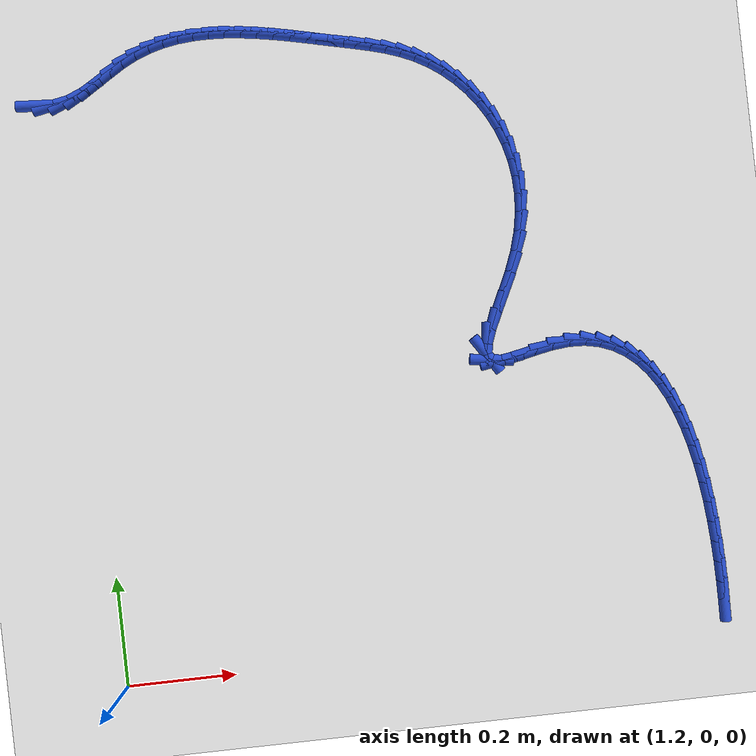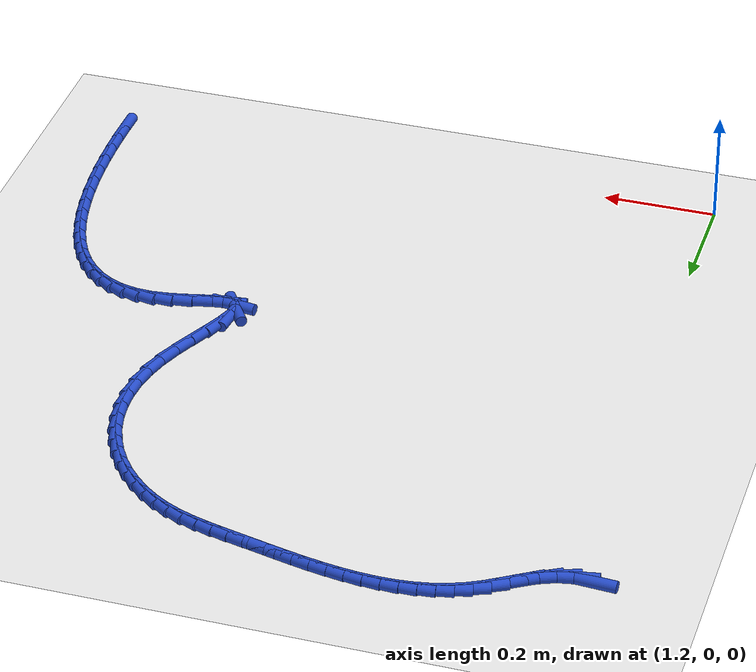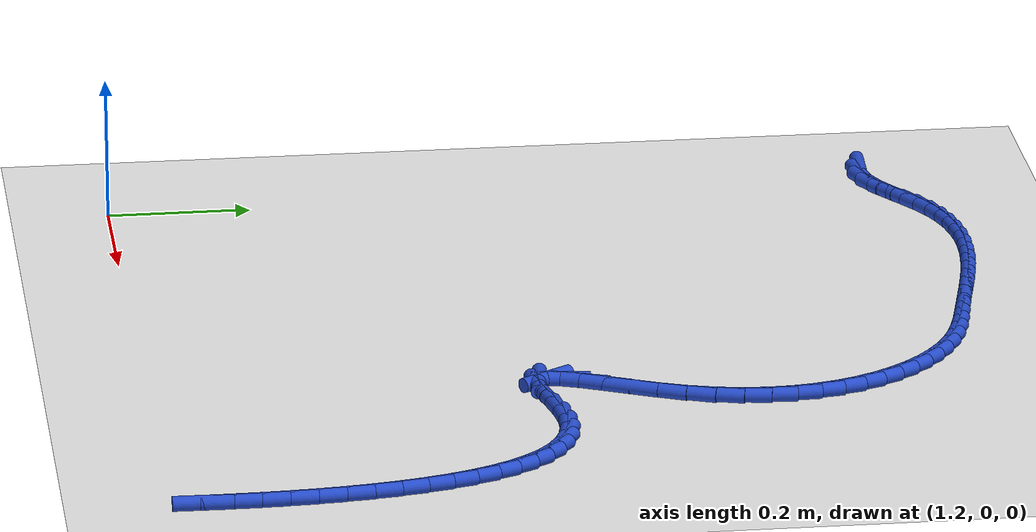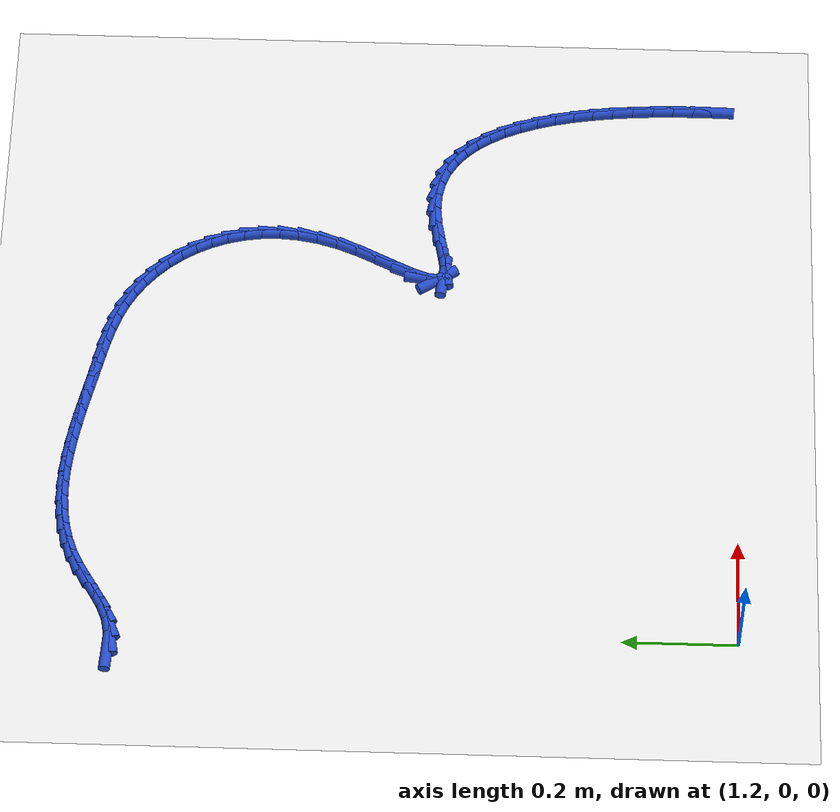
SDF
<sdf version="1.6">
 <world name="default">
  <model name="ground_plane">
   <static>1</static>
   <link name="link">
    <collision name="collision">
     <geometry><plane><normal>0 0 1</normal><size>100 100</size></plane></geometry>
     <surface><friction><ode><mu>100</mu><mu2>50</mu2></ode></friction></surface>
    </collision>
    <visual name="visual">
     <cast_shadows>0</cast_shadows>
     <geometry><plane><normal>0 0 1</normal><size>100 100</size></plane></geometry>
     <material>
      <script><uri>file://media/materials/scripts/gazebo.material</uri><name>Gazebo/WhiteGlow</name></script>
     </material>
    </visual>
   </link>
  </model>
  <model name="line">
   <link name="link_71">
    <pose>1.155740205684244 1.0738016635887804 0.01 0 1.57 -0.0623158825441884</pose>
    <collision name="collision">
     <geometry><cylinder><radius>0.01</radius><length>0.08</length></cylinder></geometry>
    </collision>
    <visual name="visual">
     <material>
      <script><name>Gazebo/Blue</name><uri>file://media/materials/scripts/gazebo.material</uri></script>
     </material>
     <geometry><cylinder><radius>0.01</radius><length>0.08</length></cylinder></geometry>
    </visual>
   </link>
   <link name="link_72">
    <pose>1.1849252234740182 1.0719806156311802 0.01 0 1.57 0.1851801011356724</pose>
    <collision name="collision">
     <geometry><cylinder><radius>0.01</radius><length>0.08</length></cylinder></geometry>
    </collision>
    <visual name="visual">
     <material>
      <script><name>Gazebo/Blue</name><uri>file://media/materials/scripts/gazebo.material</uri></script>
     </material>
     <geometry><cylinder><radius>0.01</radius><length>0.08</length></cylinder></geometry>
    </visual>
   </link>
   <link name="link_73">
    <pose>1.2124390527014814 1.0771346782395015 0.01 0 1.57 0.3870645522478079</pose>
    <collision name="collision">
     <geometry><cylinder><radius>0.01</radius><length>0.08</length></cylinder></geometry>
    </collision>
    <visual name="visual">
     <material>
      <script><name>Gazebo/Blue</name><uri>file://media/materials/scripts/gazebo.material</uri></script>
     </material>
     <geometry><cylinder><radius>0.01</radius><length>0.08</length></cylinder></geometry>
    </visual>
   </link>
   <link name="link_74">
    <pose>1.2386199839189125 1.087806748443775 0.01 0 1.57 0.5113178885886072</pose>
    <collision name="collision">
     <geometry><cylinder><radius>0.01</radius><length>0.08</length></cylinder></geometry>
    </collision>
    <visual name="visual">
     <material>
      <script><name>Gazebo/Blue</name><uri>file://media/materials/scripts/gazebo.material</uri></script>
     </material>
     <geometry><cylinder><radius>0.01</radius><length>0.08</length></cylinder></geometry>
    </visual>
   </link>
   <link name="link_75">
    <pose>1.2639571579565916 1.1020231891381715 0.01 0 1.57 0.5635656389518487</pose>
    <collision name="collision">
     <geometry><cylinder><radius>0.01</radius><length>0.08</length></cylinder></geometry>
    </collision>
    <visual name="visual">
     <material>
      <script><name>Gazebo/Blue</name><uri>file://media/materials/scripts/gazebo.material</uri></script>
     </material>
     <geometry><cylinder><radius>0.01</radius><length>0.08</length></cylinder></geometry>
    </visual>
   </link>
   <link name="link_76">
    <pose>1.2889397156447955 1.117810363216861 0.01 0 1.57 0.5495616790944967</pose>
    <collision name="collision">
     <geometry><cylinder><radius>0.01</radius><length>0.08</length></cylinder></geometry>
    </collision>
    <visual name="visual">
     <material>
      <script><name>Gazebo/Blue</name><uri>file://media/materials/scripts/gazebo.material</uri></script>
     </material>
     <geometry><cylinder><radius>0.01</radius><length>0.08</length></cylinder></geometry>
    </visual>
   </link>
   <link name="link_77">
    <pose>1.3140567978138031 1.133194633574014 0.01 0 1.57 0.4703430032220692</pose>
    <collision name="collision">
     <geometry><cylinder><radius>0.01</radius><length>0.08</length></cylinder></geometry>
    </collision>
    <visual name="visual">
     <material>
      <script><name>Gazebo/Blue</name><uri>file://media/materials/scripts/gazebo.material</uri></script>
     </material>
     <geometry><cylinder><radius>0.01</radius><length>0.08</length></cylinder></geometry>
    </visual>
   </link>
   <link name="link_78">
    <pose>1.3397795237980252 1.146272002655462 0.01 0 1.57 0.3619452551312873</pose>
    <collision name="collision">
     <geometry><cylinder><radius>0.01</radius><length>0.08</length></cylinder></geometry>
    </collision>
    <visual name="visual">
     <material>
      <script><name>Gazebo/Blue</name><uri>file://media/materials/scripts/gazebo.material</uri></script>
     </material>
     <geometry><cylinder><radius>0.01</radius><length>0.08</length></cylinder></geometry>
    </visual>
   </link>
   <link name="link_79">
    <pose>1.3662772139083892 1.1563046995533062 0.01 0 1.57 0.2593971306415469</pose>
    <collision name="collision">
     <geometry><cylinder><radius>0.01</radius><length>0.08</length></cylinder></geometry>
    </collision>
    <visual name="visual">
     <material>
      <script><name>Gazebo/Blue</name><uri>file://media/materials/scripts/gazebo.material</uri></script>
     </material>
     <geometry><cylinder><radius>0.01</radius><length>0.08</length></cylinder></geometry>
    </visual>
   </link>
   <link name="link_80">
    <pose>1.3934692406700901 1.1635208139000017 0.01 0 1.57 0.16597835343669565</pose>
    <collision name="collision">
     <geometry><cylinder><radius>0.01</radius><length>0.08</length></cylinder></geometry>
    </collision>
    <visual name="visual">
     <material>
      <script><name>Gazebo/Blue</name><uri>file://media/materials/scripts/gazebo.material</uri></script>
     </material>
     <geometry><cylinder><radius>0.01</radius><length>0.08</length></cylinder></geometry>
    </visual>
   </link>
   <link name="link_81">
    <pose>1.4212674410177735 1.1681775547280415 0.01 0 1.57 0.0829620855339889</pose>
    <collision name="collision">
     <geometry><cylinder><radius>0.01</radius><length>0.08</length></cylinder></geometry>
    </collision>
    <visual name="visual">
     <material>
      <script><name>Gazebo/Blue</name><uri>file://media/materials/scripts/gazebo.material</uri></script>
     </material>
     <geometry><cylinder><radius>0.01</radius><length>0.08</length></cylinder></geometry>
    </visual>
   </link>
   <link name="link_82">
    <pose>1.449583651886083 1.1705321310699164 0.01 0 1.57 0.01077048241809507</pose>
    <collision name="collision">
     <geometry><cylinder><radius>0.01</radius><length>0.08</length></cylinder></geometry>
    </collision>
    <visual name="visual">
     <material>
      <script><name>Gazebo/Blue</name><uri>file://media/materials/scripts/gazebo.material</uri></script>
     </material>
     <geometry><cylinder><radius>0.01</radius><length>0.08</length></cylinder></geometry>
    </visual>
   </link>
   <link name="link_83">
    <pose>1.4783297102096633 1.17084175195812 0.01 0 1.57 -0.05077242349060706</pose>
    <collision name="collision">
     <geometry><cylinder><radius>0.01</radius><length>0.08</length></cylinder></geometry>
    </collision>
    <visual name="visual">
     <material>
      <script><name>Gazebo/Blue</name><uri>file://media/materials/scripts/gazebo.material</uri></script>
     </material>
     <geometry><cylinder><radius>0.01</radius><length>0.08</length></cylinder></geometry>
    </visual>
   </link>
   <link name="link_84">
    <pose>1.507417452923158 1.169363626425144 0.01 0 1.57 -0.10218319378531548</pose>
    <collision name="collision">
     <geometry><cylinder><radius>0.01</radius><length>0.08</length></cylinder></geometry>
    </collision>
    <visual name="visual">
     <material>
      <script><name>Gazebo/Blue</name><uri>file://media/materials/scripts/gazebo.material</uri></script>
     </material>
     <geometry><cylinder><radius>0.01</radius><length>0.08</length></cylinder></geometry>
    </visual>
   </link>
   <link name="link_85">
    <pose>1.5367587169612131 1.1663549635034802 0.01 0 1.57 -0.14411362504293787</pose>
    <collision name="collision">
     <geometry><cylinder><radius>0.01</radius><length>0.08</length></cylinder></geometry>
    </collision>
    <visual name="visual">
     <material>
      <script><name>Gazebo/Blue</name><uri>file://media/materials/scripts/gazebo.material</uri></script>
     </material>
     <geometry><cylinder><radius>0.01</radius><length>0.08</length></cylinder></geometry>
    </visual>
   </link>
   <link name="link_86">
    <pose>1.566265339258472 1.162072972225622 0.01 0 1.57 -0.17720954699792554</pose>
    <collision name="collision">
     <geometry><cylinder><radius>0.01</radius><length>0.08</length></cylinder></geometry>
    </collision>
    <visual name="visual">
     <material>
      <script><name>Gazebo/Blue</name><uri>file://media/materials/scripts/gazebo.material</uri></script>
     </material>
     <geometry><cylinder><radius>0.01</radius><length>0.08</length></cylinder></geometry>
    </visual>
   </link>
   <link name="link_87">
    <pose>1.59584915674958 1.1567748616240607 0.01 0 1.57 -0.20202292399003485</pose>
    <collision name="collision">
     <geometry><cylinder><radius>0.01</radius><length>0.08</length></cylinder></geometry>
    </collision>
    <visual name="visual">
     <material>
      <script><name>Gazebo/Blue</name><uri>file://media/materials/scripts/gazebo.material</uri></script>
     </material>
     <geometry><cylinder><radius>0.01</radius><length>0.08</length></cylinder></geometry>
    </visual>
   </link>
   <link name="link_88">
    <pose>1.62542200636918 1.1507178407312886 0.01 0 1.57 -0.21896013679982287</pose>
    <collision name="collision">
     <geometry><cylinder><radius>0.01</radius><length>0.08</length></cylinder></geometry>
    </collision>
    <visual name="visual">
     <material>
      <script><name>Gazebo/Blue</name><uri>file://media/materials/scripts/gazebo.material</uri></script>
     </material>
     <geometry><cylinder><radius>0.01</radius><length>0.08</length></cylinder></geometry>
    </visual>
   </link>
   <link name="link_89">
    <pose>1.6548957250519178 1.1441591185797986 0.01 0 1.57 -0.22825101534295333</pose>
    <collision name="collision">
     <geometry><cylinder><radius>0.01</radius><length>0.08</length></cylinder></geometry>
    </collision>
    <visual name="visual">
     <material>
      <script><name>Gazebo/Blue</name><uri>file://media/materials/scripts/gazebo.material</uri></script>
     </material>
     <geometry><cylinder><radius>0.01</radius><length>0.08</length></cylinder></geometry>
    </visual>
   </link>
   <link name="link_90">
    <pose>1.6841821497324372 1.137355904202082 0.01 0 1.57 -0.22992719399648778</pose>
    <collision name="collision">
     <geometry><cylinder><radius>0.01</radius><length>0.08</length></cylinder></geometry>
    </collision>
    <visual name="visual">
     <material>
      <script><name>Gazebo/Blue</name><uri>file://media/materials/scripts/gazebo.material</uri></script>
     </material>
     <geometry><cylinder><radius>0.01</radius><length>0.08</length></cylinder></geometry>
    </visual>
   </link>
   <link name="link_91">
    <pose>1.7131931173453832 1.1305654066306317 0.01 0 1.57 -0.2273528205879617</pose>
    <collision name="collision">
     <geometry><cylinder><radius>0.01</radius><length>0.08</length></cylinder></geometry>
    </collision>
    <visual name="visual">
     <material>
      <script><name>Gazebo/Blue</name><uri>file://media/materials/scripts/gazebo.material</uri></script>
     </material>
     <geometry><cylinder><radius>0.01</radius><length>0.08</length></cylinder></geometry>
    </visual>
   </link>
   <link name="link_92">
    <pose>1.7418338892478185 1.1239392844451332 0.01 0 1.57 -0.24014466228513986</pose>
    <collision name="collision">
     <geometry><cylinder><radius>0.01</radius><length>0.08</length></cylinder></geometry>
    </collision>
    <visual name="visual">
     <material>
      <script><name>Gazebo/Blue</name><uri>file://media/materials/scripts/gazebo.material</uri></script>
     </material>
     <geometry><cylinder><radius>0.01</radius><length>0.08</length></cylinder></geometry>
    </visual>
   </link>
   <link name="link_93">
    <pose>1.7699735643913241 1.1170487212440794 0.01 0 1.57 -0.27582676932500017</pose>
    <collision name="collision">
     <geometry><cylinder><radius>0.01</radius><length>0.08</length></cylinder></geometry>
    </collision>
    <visual name="visual">
     <material>
      <script><name>Gazebo/Blue</name><uri>file://media/materials/scripts/gazebo.material</uri></script>
     </material>
     <geometry><cylinder><radius>0.01</radius><length>0.08</length></cylinder></geometry>
    </visual>
   </link>
   <link name="link_94">
    <pose>1.797468876131232 1.1092664094261584 0.01 0 1.57 -0.3351348015333552</pose>
    <collision name="collision">
     <geometry><cylinder><radius>0.01</radius><length>0.08</length></cylinder></geometry>
    </collision>
    <visual name="visual">
     <material>
      <script><name>Gazebo/Blue</name><uri>file://media/materials/scripts/gazebo.material</uri></script>
     </material>
     <geometry><cylinder><radius>0.01</radius><length>0.08</length></cylinder></geometry>
    </visual>
   </link>
   <link name="link_95">
    <pose>1.8241765470533347 1.0999648685186152 0.01 0 1.57 -0.417954742862448</pose>
    <collision name="collision">
     <geometry><cylinder><radius>0.01</radius><length>0.08</length></cylinder></geometry>
    </collision>
    <visual name="visual">
     <material>
      <script><name>Gazebo/Blue</name><uri>file://media/materials/scripts/gazebo.material</uri></script>
     </material>
     <geometry><cylinder><radius>0.01</radius><length>0.08</length></cylinder></geometry>
    </visual>
   </link>
   <link name="link_96">
    <pose>1.8499532719138303 1.0885168670786085 0.01 0 1.57 -0.5171883826098536</pose>
    <collision name="collision">
     <geometry><cylinder><radius>0.01</radius><length>0.08</length></cylinder></geometry>
    </collision>
    <visual name="visual">
     <material>
      <script><name>Gazebo/Blue</name><uri>file://media/materials/scripts/gazebo.material</uri></script>
     </material>
     <geometry><cylinder><radius>0.01</radius><length>0.08</length></cylinder></geometry>
    </visual>
   </link>
   <link name="link_97">
    <pose>1.874635449065376 1.0744767936933668 0.01 0 1.57 -0.6169609946714725</pose>
    <collision name="collision">
     <geometry><cylinder><radius>0.01</radius><length>0.08</length></cylinder></geometry>
    </collision>
    <visual name="visual">
     <material>
      <script><name>Gazebo/Blue</name><uri>file://media/materials/scripts/gazebo.material</uri></script>
     </material>
     <geometry><cylinder><radius>0.01</radius><length>0.08</length></cylinder></geometry>
    </visual>
   </link>
   <link name="link_98">
    <pose>1.8980033579518198 1.057901210543721 0.01 0 1.57 -0.715503757563196</pose>
    <collision name="collision">
     <geometry><cylinder><radius>0.01</radius><length>0.08</length></cylinder></geometry>
    </collision>
    <visual name="visual">
     <material>
      <script><name>Gazebo/Blue</name><uri>file://media/materials/scripts/gazebo.material</uri></script>
     </material>
     <geometry><cylinder><radius>0.01</radius><length>0.08</length></cylinder></geometry>
    </visual>
   </link>
   <link name="link_99">
    <pose>1.9198276598643855 1.0389327467417884 0.01 0 1.57 -0.8136764746908689</pose>
    <collision name="collision">
     <geometry><cylinder><radius>0.01</radius><length>0.08</length></cylinder></geometry>
    </collision>
    <visual name="visual">
     <material>
      <script><name>Gazebo/Blue</name><uri>file://media/materials/scripts/gazebo.material</uri></script>
     </material>
     <geometry><cylinder><radius>0.01</radius><length>0.08</length></cylinder></geometry>
    </visual>
   </link>
   <link name="link_100">
    <pose>1.9398790160942978 1.0177140313996842 0.01 0 1.57 -0.9122591491433035</pose>
    <collision name="collision">
     <geometry><cylinder><radius>0.01</radius><length>0.08</length></cylinder></geometry>
    </collision>
    <visual name="visual">
     <material>
      <script><name>Gazebo/Blue</name><uri>file://media/materials/scripts/gazebo.material</uri></script>
     </material>
     <geometry><cylinder><radius>0.01</radius><length>0.08</length></cylinder></geometry>
    </visual>
   </link>
   <link name="link_101">
    <pose>1.9579280879327792 0.9943876936295263 0.01 0 1.57 -1.0119023092467068</pose>
    <collision name="collision">
     <geometry><cylinder><radius>0.01</radius><length>0.08</length></cylinder></geometry>
    </collision>
    <visual name="visual">
     <material>
      <script><name>Gazebo/Blue</name><uri>file://media/materials/scripts/gazebo.material</uri></script>
     </material>
     <geometry><cylinder><radius>0.01</radius><length>0.08</length></cylinder></geometry>
    </visual>
   </link>
   <link name="link_102">
    <pose>1.9737455366710526 0.9690963625434302 0.01 0 1.57 -1.1130778942528932</pose>
    <collision name="collision">
     <geometry><cylinder><radius>0.01</radius><length>0.08</length></cylinder></geometry>
    </collision>
    <visual name="visual">
     <material>
      <script><name>Gazebo/Blue</name><uri>file://media/materials/scripts/gazebo.material</uri></script>
     </material>
     <geometry><cylinder><radius>0.01</radius><length>0.08</length></cylinder></geometry>
    </visual>
   </link>
   <link name="link_103">
    <pose>1.9871020236003425 0.9419826672535125 0.01 0 1.57 -1.2160310319602583</pose>
    <collision name="collision">
     <geometry><cylinder><radius>0.01</radius><length>0.08</length></cylinder></geometry>
    </collision>
    <visual name="visual">
     <material>
      <script><name>Gazebo/Blue</name><uri>file://media/materials/scripts/gazebo.material</uri></script>
     </material>
     <geometry><cylinder><radius>0.01</radius><length>0.08</length></cylinder></geometry>
    </visual>
   </link>
   <link name="link_104">
    <pose>1.9977682100118732 0.9131892368718897 0.01 0 1.57 -1.3207378358200592</pose>
    <collision name="collision">
     <geometry><cylinder><radius>0.01</radius><length>0.08</length></cylinder></geometry>
    </collision>
    <visual name="visual">
     <material>
      <script><name>Gazebo/Blue</name><uri>file://media/materials/scripts/gazebo.material</uri></script>
     </material>
     <geometry><cylinder><radius>0.01</radius><length>0.08</length></cylinder></geometry>
    </visual>
   </link>
   <link name="link_105">
    <pose>2.005514757196866 0.8828587005106782 0.01 0 1.57 -1.4268788657941713</pose>
    <collision name="collision">
     <geometry><cylinder><radius>0.01</radius><length>0.08</length></cylinder></geometry>
    </collision>
    <visual name="visual">
     <material>
      <script><name>Gazebo/Blue</name><uri>file://media/materials/scripts/gazebo.material</uri></script>
     </material>
     <geometry><cylinder><radius>0.01</radius><length>0.08</length></cylinder></geometry>
    </visual>
   </link>
   <link name="link_106">
    <pose>2.0101123264465466 0.8511336872819948 0.01 0 1.57 -1.533840186902279</pose>
    <collision name="collision">
     <geometry><cylinder><radius>0.01</radius><length>0.08</length></cylinder></geometry>
    </collision>
    <visual name="visual">
     <material>
      <script><name>Gazebo/Blue</name><uri>file://media/materials/scripts/gazebo.material</uri></script>
     </material>
     <geometry><cylinder><radius>0.01</radius><length>0.08</length></cylinder></geometry>
    </visual>
   </link>
   <link name="link_107">
    <pose>2.011331579052137 0.8181568262979552 0.01 0 1.57 1.5008409252602342</pose>
    <collision name="collision">
     <geometry><cylinder><radius>0.01</radius><length>0.08</length></cylinder></geometry>
    </collision>
    <visual name="visual">
     <material>
      <script><name>Gazebo/Blue</name><uri>file://media/materials/scripts/gazebo.material</uri></script>
     </material>
     <geometry><cylinder><radius>0.01</radius><length>0.08</length></cylinder></geometry>
    </visual>
   </link>
   <link name="link_108">
    <pose>2.0089431763048617 0.7840707466706764 0.01 0 1.57 1.3950278551251099</pose>
    <collision name="collision">
     <geometry><cylinder><radius>0.01</radius><length>0.08</length></cylinder></geometry>
    </collision>
    <visual name="visual">
     <material>
      <script><name>Gazebo/Blue</name><uri>file://media/materials/scripts/gazebo.material</uri></script>
     </material>
     <geometry><cylinder><radius>0.01</radius><length>0.08</length></cylinder></geometry>
    </visual>
   </link>
   <link name="link_109">
    <pose>2.0027177794959434 0.7490180775122739 0.01 0 1.57 1.2914336325551075</pose>
    <collision name="collision">
     <geometry><cylinder><radius>0.01</radius><length>0.08</length></cylinder></geometry>
    </collision>
    <visual name="visual">
     <material>
      <script><name>Gazebo/Blue</name><uri>file://media/materials/scripts/gazebo.material</uri></script>
     </material>
     <geometry><cylinder><radius>0.01</radius><length>0.08</length></cylinder></geometry>
    </visual>
   </link>
   <link name="link_110">
    <pose>1.9924260499166073 0.7131414479348659 0.01 0 1.57 1.1969675031558646</pose>
    <collision name="collision">
     <geometry><cylinder><radius>0.01</radius><length>0.08</length></cylinder></geometry>
    </collision>
    <visual name="visual">
     <material>
      <script><name>Gazebo/Blue</name><uri>file://media/materials/scripts/gazebo.material</uri></script>
     </material>
     <geometry><cylinder><radius>0.01</radius><length>0.08</length></cylinder></geometry>
    </visual>
   </link>
   <link name="link_111">
    <pose>1.978146883572078 0.6767404985117013 0.01 0 1.57 1.1383208415952442</pose>
    <collision name="collision">
     <geometry><cylinder><radius>0.01</radius><length>0.08</length></cylinder></geometry>
    </collision>
    <visual name="visual">
     <material>
      <script><name>Gazebo/Blue</name><uri>file://media/materials/scripts/gazebo.material</uri></script>
     </material>
     <geometry><cylinder><radius>0.01</radius><length>0.08</length></cylinder></geometry>
    </visual>
   </link>
   <link name="link_112">
    <pose>1.9616334308365386 0.6409677170549598 0.01 0 1.57 1.117242657049588</pose>
    <collision name="collision">
     <geometry><cylinder><radius>0.01</radius><length>0.08</length></cylinder></geometry>
    </collision>
    <visual name="visual">
     <material>
      <script><name>Gazebo/Blue</name><uri>file://media/materials/scripts/gazebo.material</uri></script>
     </material>
     <geometry><cylinder><radius>0.01</radius><length>0.08</length></cylinder></geometry>
    </visual>
   </link>
   <link name="link_113">
    <pose>1.9452045988858941 0.6072637818305535 0.01 0 1.57 1.1359590417704133</pose>
    <collision name="collision">
     <geometry><cylinder><radius>0.01</radius><length>0.08</length></cylinder></geometry>
    </collision>
    <visual name="visual">
     <material>
      <script><name>Gazebo/Blue</name><uri>file://media/materials/scripts/gazebo.material</uri></script>
     </material>
     <geometry><cylinder><radius>0.01</radius><length>0.08</length></cylinder></geometry>
    </visual>
   </link>
   <link name="link_114">
    <pose>1.9311797376176343 0.5770695966220283 0.01 0 1.57 1.2177608655180556</pose>
    <collision name="collision">
     <geometry><cylinder><radius>0.01</radius><length>0.08</length></cylinder></geometry>
    </collision>
    <visual name="visual">
     <material>
      <script><name>Gazebo/Blue</name><uri>file://media/materials/scripts/gazebo.material</uri></script>
     </material>
     <geometry><cylinder><radius>0.01</radius><length>0.08</length></cylinder></geometry>
    </visual>
   </link>
   <link name="link_115">
    <pose>1.9218781969292473 0.5518260652129277 0.01 0 1.57 1.4515434527214108</pose>
    <collision name="collision">
     <geometry><cylinder><radius>0.01</radius><length>0.08</length></cylinder></geometry>
    </collision>
    <visual name="visual">
     <material>
      <script><name>Gazebo/Blue</name><uri>file://media/materials/scripts/gazebo.material</uri></script>
     </material>
     <geometry><cylinder><radius>0.01</radius><length>0.08</length></cylinder></geometry>
    </visual>
   </link>
   <link name="link_116">
    <pose>1.919619326718222 0.5329740913867962 0.01 0 1.57 -0.9982283788407794</pose>
    <collision name="collision">
     <geometry><cylinder><radius>0.01</radius><length>0.08</length></cylinder></geometry>
    </collision>
    <visual name="visual">
     <material>
      <script><name>Gazebo/Blue</name><uri>file://media/materials/scripts/gazebo.material</uri></script>
     </material>
     <geometry><cylinder><radius>0.01</radius><length>0.08</length></cylinder></geometry>
    </visual>
   </link>
   <link name="link_117">
    <pose>1.9267224768820463 0.5219545789271779 0.01 0 1.57 -0.13540924114605765</pose>
    <collision name="collision">
     <geometry><cylinder><radius>0.01</radius><length>0.08</length></cylinder></geometry>
    </collision>
    <visual name="visual">
     <material>
      <script><name>Gazebo/Blue</name><uri>file://media/materials/scripts/gazebo.material</uri></script>
     </material>
     <geometry><cylinder><radius>0.01</radius><length>0.08</length></cylinder></geometry>
    </visual>
   </link>
   <link name="link_118">
    <pose>1.9446646445687483 0.5195100848484832 0.01 0 1.57 0.14193153784038073</pose>
    <collision name="collision">
     <geometry><cylinder><radius>0.01</radius><length>0.08</length></cylinder></geometry>
    </collision>
    <visual name="visual">
     <material>
      <script><name>Gazebo/Blue</name><uri>file://media/materials/scripts/gazebo.material</uri></script>
     </material>
     <geometry><cylinder><radius>0.01</radius><length>0.08</length></cylinder></geometry>
    </visual>
   </link>
   <link name="link_119">
    <pose>1.9712072893252353 0.5233028252022651 0.01 0 1.57 0.21144182752732463</pose>
    <collision name="collision">
     <geometry><cylinder><radius>0.01</radius><length>0.08</length></cylinder></geometry>
    </collision>
    <visual name="visual">
     <material>
      <script><name>Gazebo/Blue</name><uri>file://media/materials/scripts/gazebo.material</uri></script>
     </material>
     <geometry><cylinder><radius>0.01</radius><length>0.08</length></cylinder></geometry>
    </visual>
   </link>
   <link name="link_120">
    <pose>2.0030877465457357 0.5301459729358995 0.01 0 1.57 0.19500404695090784</pose>
    <collision name="collision">
     <geometry><cylinder><radius>0.01</radius><length>0.08</length></cylinder></geometry>
    </collision>
    <visual name="visual">
     <material>
      <script><name>Gazebo/Blue</name><uri>file://media/materials/scripts/gazebo.material</uri></script>
     </material>
     <geometry><cylinder><radius>0.01</radius><length>0.08</length></cylinder></geometry>
    </visual>
   </link>
   <link name="link_121">
    <pose>2.037043319465709 0.5368526743357535 0.01 0 1.57 0.1048585441424994</pose>
    <collision name="collision">
     <geometry><cylinder><radius>0.01</radius><length>0.08</length></cylinder></geometry>
    </collision>
    <visual name="visual">
     <material>
      <script><name>Gazebo/Blue</name><uri>file://media/materials/scripts/gazebo.material</uri></script>
     </material>
     <geometry><cylinder><radius>0.01</radius><length>0.08</length></cylinder></geometry>
    </visual>
   </link>
   <link name="link_122">
    <pose>2.069881699063501 0.5403087351320334 0.01 0 1.57 -0.04105745409878657</pose>
    <collision name="collision">
     <geometry><cylinder><radius>0.01</radius><length>0.08</length></cylinder></geometry>
    </collision>
    <visual name="visual">
     <material>
      <script><name>Gazebo/Blue</name><uri>file://media/materials/scripts/gazebo.material</uri></script>
     </material>
     <geometry><cylinder><radius>0.01</radius><length>0.08</length></cylinder></geometry>
    </visual>
   </link>
   <link name="link_123">
    <pose>2.1000286737571003 0.5390702811308115 0.01 0 1.57 -0.2046297407221471</pose>
    <collision name="collision">
     <geometry><cylinder><radius>0.01</radius><length>0.08</length></cylinder></geometry>
    </collision>
    <visual name="visual">
     <material>
      <script><name>Gazebo/Blue</name><uri>file://media/materials/scripts/gazebo.material</uri></script>
     </material>
     <geometry><cylinder><radius>0.01</radius><length>0.08</length></cylinder></geometry>
    </visual>
   </link>
   <link name="link_124">
    <pose>2.127527673620521 0.5333632877204056 0.01 0 1.57 -0.37673995794470283</pose>
    <collision name="collision">
     <geometry><cylinder><radius>0.01</radius><length>0.08</length></cylinder></geometry>
    </collision>
    <visual name="visual">
     <material>
      <script><name>Gazebo/Blue</name><uri>file://media/materials/scripts/gazebo.material</uri></script>
     </material>
     <geometry><cylinder><radius>0.01</radius><length>0.08</length></cylinder></geometry>
    </visual>
   </link>
   <link name="link_125">
    <pose>2.1524924253139397 0.5234862956342468 0.01 0 1.57 -0.547625875535118</pose>
    <collision name="collision">
     <geometry><cylinder><radius>0.01</radius><length>0.08</length></cylinder></geometry>
    </collision>
    <visual name="visual">
     <material>
      <script><name>Gazebo/Blue</name><uri>file://media/materials/scripts/gazebo.material</uri></script>
     </material>
     <geometry><cylinder><radius>0.01</radius><length>0.08</length></cylinder></geometry>
    </visual>
   </link>
   <link name="link_126">
    <pose>2.1750366554975344 0.5097378456057653 0.01 0 1.57 -0.7079135349083102</pose>
    <collision name="collision">
     <geometry><cylinder><radius>0.01</radius><length>0.08</length></cylinder></geometry>
    </collision>
    <visual name="visual">
     <material>
      <script><name>Gazebo/Blue</name><uri>file://media/materials/scripts/gazebo.material</uri></script>
     </material>
     <geometry><cylinder><radius>0.01</radius><length>0.08</length></cylinder></geometry>
    </visual>
   </link>
   <link name="link_127">
    <pose>2.195274090831482 0.4924164783683918 0.01 0 1.57 -0.8513316791386117</pose>
    <collision name="collision">
     <geometry><cylinder><radius>0.01</radius><length>0.08</length></cylinder></geometry>
    </collision>
    <visual name="visual">
     <material>
      <script><name>Gazebo/Blue</name><uri>file://media/materials/scripts/gazebo.material</uri></script>
     </material>
     <geometry><cylinder><radius>0.01</radius><length>0.08</length></cylinder></geometry>
    </visual>
   </link>
   <link name="link_128">
    <pose>2.213318457975959 0.471820734655557 0.01 0 1.57 -0.9754684173120667</pose>
    <collision name="collision">
     <geometry><cylinder><radius>0.01</radius><length>0.08</length></cylinder></geometry>
    </collision>
    <visual name="visual">
     <material>
      <script><name>Gazebo/Blue</name><uri>file://media/materials/scripts/gazebo.material</uri></script>
     </material>
     <geometry><cylinder><radius>0.01</radius><length>0.08</length></cylinder></geometry>
    </visual>
   </link>
   <link name="link_129">
    <pose>2.229283483591144 0.4482491552006915 0.01 0 1.57 -1.0808386733233988</pose>
    <collision name="collision">
     <geometry><cylinder><radius>0.01</radius><length>0.08</length></cylinder></geometry>
    </collision>
    <visual name="visual">
     <material>
      <script><name>Gazebo/Blue</name><uri>file://media/materials/scripts/gazebo.material</uri></script>
     </material>
     <geometry><cylinder><radius>0.01</radius><length>0.08</length></cylinder></geometry>
    </visual>
   </link>
   <link name="link_130">
    <pose>2.243282894337214 0.4220002807372258 0.01 0 1.57 -1.1694944715827558</pose>
    <collision name="collision">
     <geometry><cylinder><radius>0.01</radius><length>0.08</length></cylinder></geometry>
    </collision>
    <visual name="visual">
     <material>
      <script><name>Gazebo/Blue</name><uri>file://media/materials/scripts/gazebo.material</uri></script>
     </material>
     <geometry><cylinder><radius>0.01</radius><length>0.08</length></cylinder></geometry>
    </visual>
   </link>
   <link name="link_131">
    <pose>2.2554304168743444 0.39337265199859006 0.01 0 1.57 -1.243971925056247</pose>
    <collision name="collision">
     <geometry><cylinder><radius>0.01</radius><length>0.08</length></cylinder></geometry>
    </collision>
    <visual name="visual">
     <material>
      <script><name>Gazebo/Blue</name><uri>file://media/materials/scripts/gazebo.material</uri></script>
     </material>
     <geometry><cylinder><radius>0.01</radius><length>0.08</length></cylinder></geometry>
    </visual>
   </link>
   <link name="link_132">
    <pose>2.2658397778627144 0.36266480971821585 0.01 0 1.57 -1.3067185572653033</pose>
    <collision name="collision">
     <geometry><cylinder><radius>0.01</radius><length>0.08</length></cylinder></geometry>
    </collision>
    <visual name="visual">
     <material>
      <script><name>Gazebo/Blue</name><uri>file://media/materials/scripts/gazebo.material</uri></script>
     </material>
     <geometry><cylinder><radius>0.01</radius><length>0.08</length></cylinder></geometry>
    </visual>
   </link>
   <link name="link_133">
    <pose>2.274624703962501 0.3301752946295333 0.01 0 1.57 -1.3598615882490204</pose>
    <collision name="collision">
     <geometry><cylinder><radius>0.01</radius><length>0.08</length></cylinder></geometry>
    </collision>
    <visual name="visual">
     <material>
      <script><name>Gazebo/Blue</name><uri>file://media/materials/scripts/gazebo.material</uri></script>
     </material>
     <geometry><cylinder><radius>0.01</radius><length>0.08</length></cylinder></geometry>
    </visual>
   </link>
   <link name="link_134">
    <pose>2.2818989218338817 0.29620264746597313 0.01 0 1.57 -1.4051579391201183</pose>
    <collision name="collision">
     <geometry><cylinder><radius>0.01</radius><length>0.08</length></cylinder></geometry>
    </collision>
    <visual name="visual">
     <material>
      <script><name>Gazebo/Blue</name><uri>file://media/materials/scripts/gazebo.material</uri></script>
     </material>
     <geometry><cylinder><radius>0.01</radius><length>0.08</length></cylinder></geometry>
    </visual>
   </link>
   <link name="link_135">
    <pose>2.287776158137032 0.2610454089609652 0.01 0 1.57 -1.4440225435743743</pose>
    <collision name="collision">
     <geometry><cylinder><radius>0.01</radius><length>0.08</length></cylinder></geometry>
    </collision>
    <visual name="visual">
     <material>
      <script><name>Gazebo/Blue</name><uri>file://media/materials/scripts/gazebo.material</uri></script>
     </material>
     <geometry><cylinder><radius>0.01</radius><length>0.08</length></cylinder></geometry>
    </visual>
   </link>
   <link name="link_136">
    <pose>2.2923701395321303 0.2250021198479413 0.01 0 1.57 -1.4775816234450685</pose>
    <collision name="collision">
     <geometry><cylinder><radius>0.01</radius><length>0.08</length></cylinder></geometry>
    </collision>
    <visual name="visual">
     <material>
      <script><name>Gazebo/Blue</name><uri>file://media/materials/scripts/gazebo.material</uri></script>
     </material>
     <geometry><cylinder><radius>0.01</radius><length>0.08</length></cylinder></geometry>
    </visual>
   </link>
   <link name="link_137">
    <pose>2.295794592679355 0.18837132086033148 0.01 0 1.57 -1.506727405884425</pose>
    <collision name="collision">
     <geometry><cylinder><radius>0.01</radius><length>0.08</length></cylinder></geometry>
    </collision>
    <visual name="visual">
     <material>
      <script><name>Gazebo/Blue</name><uri>file://media/materials/scripts/gazebo.material</uri></script>
     </material>
     <geometry><cylinder><radius>0.01</radius><length>0.08</length></cylinder></geometry>
    </visual>
   </link>
   <link name="link_138">
    <pose>2.298163244238881 0.15145155273156627 0.01 0 1.57 -1.5321656216375186</pose>
    <collision name="collision">
     <geometry><cylinder><radius>0.01</radius><length>0.08</length></cylinder></geometry>
    </collision>
    <visual name="visual">
     <material>
      <script><name>Gazebo/Blue</name><uri>file://media/materials/scripts/gazebo.material</uri></script>
     </material>
     <geometry><cylinder><radius>0.01</radius><length>0.08</length></cylinder></geometry>
    </visual>
   </link>
   <link name="link_139">
    <pose>2.299589820870886 0.11454135619507644 0.01 0 1.57 -1.5544536753343146</pose>
    <collision name="collision">
     <geometry><cylinder><radius>0.01</radius><length>0.08</length></cylinder></geometry>
    </collision>
    <visual name="visual">
     <material>
      <script><name>Gazebo/Blue</name><uri>file://media/materials/scripts/gazebo.material</uri></script>
     </material>
     <geometry><cylinder><radius>0.01</radius><length>0.08</length></cylinder></geometry>
    </visual>
   </link>
   <link name="link_140">
    <pose>2.3001880492355493 0.07793927198429189 0.01 0 1.57 1.5675627820611038</pose>
    <collision name="collision">
     <geometry><cylinder><radius>0.01</radius><length>0.08</length></cylinder></geometry>
    </collision>
    <visual name="visual">
     <material>
      <script><name>Gazebo/Blue</name><uri>file://media/materials/scripts/gazebo.material</uri></script>
     </material>
     <geometry><cylinder><radius>0.01</radius><length>0.08</length></cylinder></geometry>
    </visual>
   </link>
   <link name="link_141">
    <pose>2.300071655993046 0.04194384083264442 0.01 0 1.57 1.5503579267292693</pose>
    <collision name="collision">
     <geometry><cylinder><radius>0.01</radius><length>0.08</length></cylinder></geometry>
    </collision>
    <visual name="visual">
     <material>
      <script><name>Gazebo/Blue</name><uri>file://media/materials/scripts/gazebo.material</uri></script>
     </material>
     <geometry><cylinder><radius>0.01</radius><length>0.08</length></cylinder></geometry>
    </visual>
   </link>
  </model>
 </world>
</sdf>
